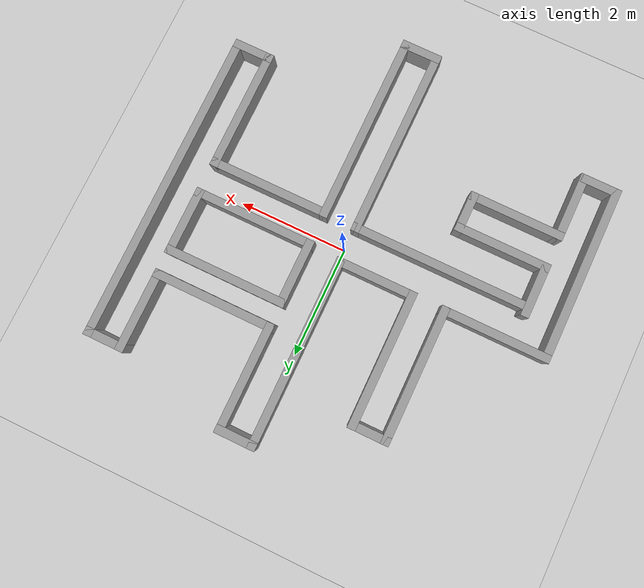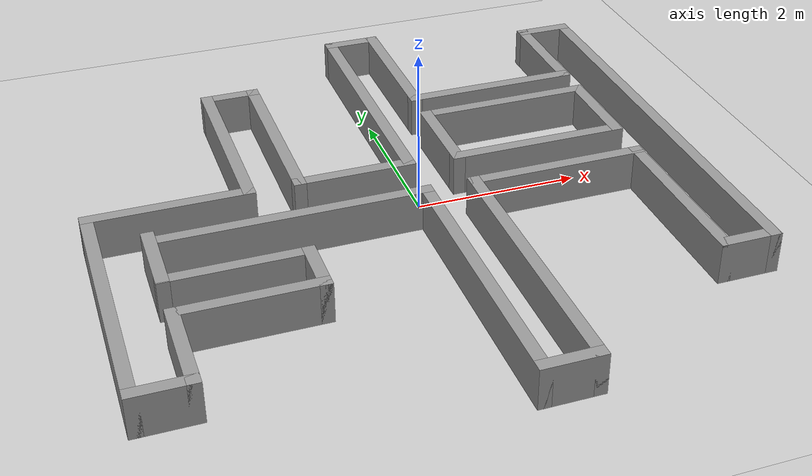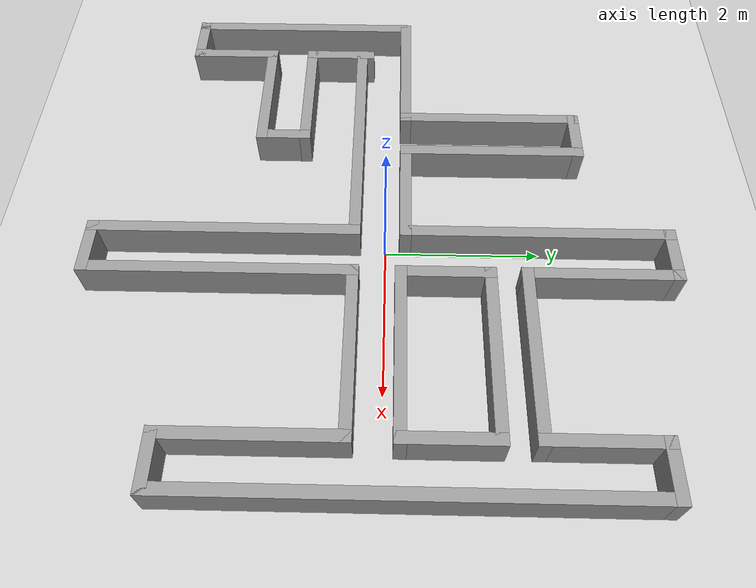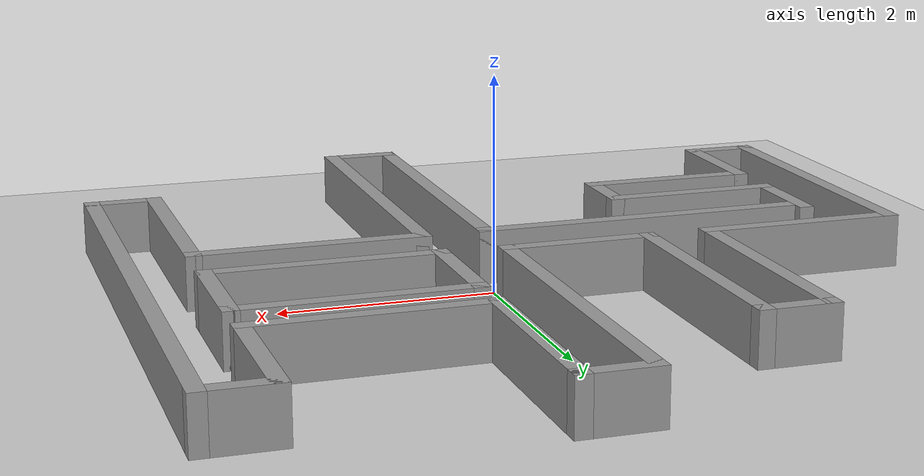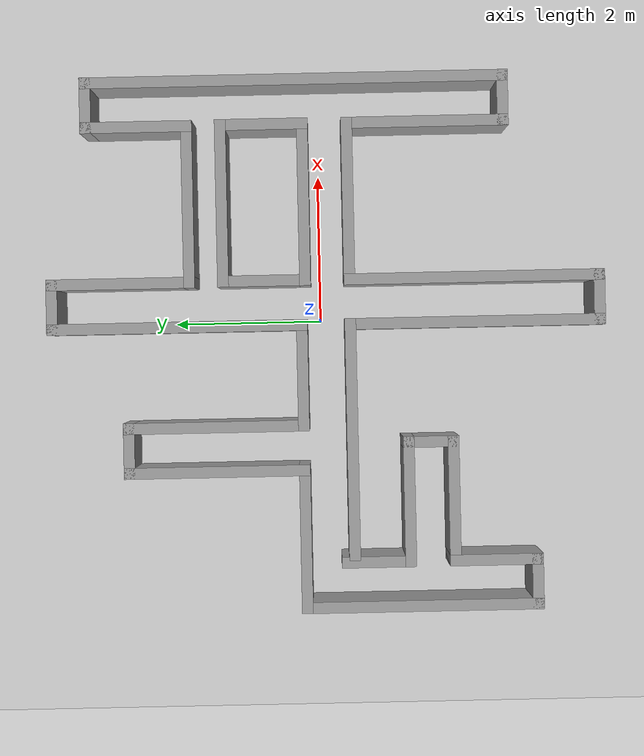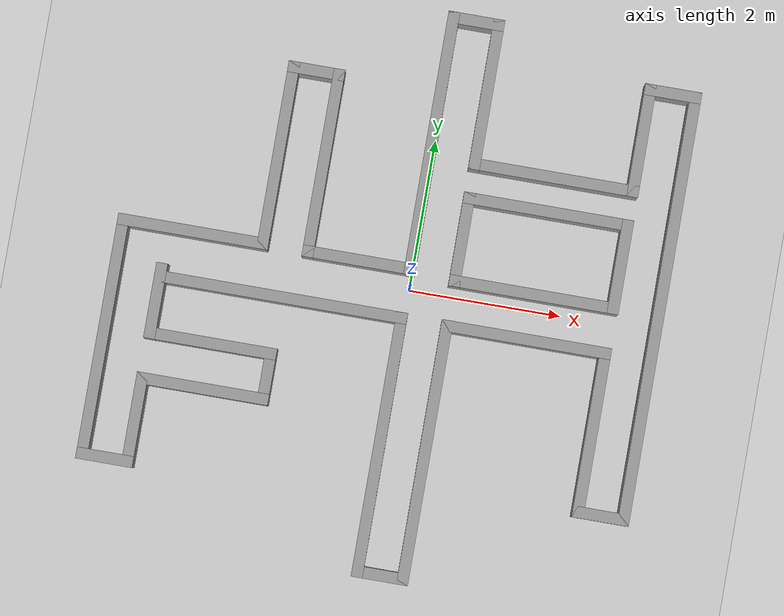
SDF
<sdf version="1.7">
 <world name="default">
  <light name="sun" type="directional">
   <pose>0 0 10 0 -0 0</pose>
   <diffuse>0.8 0.8 0.8 1</diffuse>
   <specular>0.2 0.2 0.2 1</specular>
   <attenuation>
    <range>1000</range>
    <constant>0.9</constant>
    <linear>0.01</linear>
    <quadratic>0.001</quadratic>
   </attenuation>
   <direction>-0.5 0.1 -0.9</direction>
   <spot><inner_angle>0</inner_angle><outer_angle>0</outer_angle><falloff>0</falloff></spot>
  </light>
  <model name="ground_plane">
   <static>1</static>
   <link name="link">
    <collision name="collision">
     <geometry><plane><normal>0 0 1</normal><size>100 100</size></plane></geometry>
     <surface>
      <contact><collide_bitmask>65535</collide_bitmask></contact>
      <friction><ode><mu>100</mu><mu2>50</mu2></ode></friction>
     </surface>
    </collision>
    <visual name="visual">
     <cast_shadows>0</cast_shadows>
     <geometry><plane><normal>0 0 1</normal><size>100 100</size></plane></geometry>
     <material>
      <script><uri>file://media/materials/scripts/gazebo.material</uri><name>Gazebo/Grey</name></script>
     </material>
    </visual>
   </link>
  </model>
  <physics type="ode">
   <real_time_update_rate>1000</real_time_update_rate>
   <max_step_size>0.001</max_step_size>
   <real_time_factor>1</real_time_factor>
   <ode>
    <solver>
     <type>quick</type>
     <iters>150</iters>
     <precon_iters>0</precon_iters>
     <sor>1.4</sor>
     <use_dynamic_moi_rescaling>1</use_dynamic_moi_rescaling>
    </solver>
    <constraints>
     <cfm>1e-05</cfm>
     <erp>0.2</erp>
     <contact_max_correcting_vel>2000</contact_max_correcting_vel>
     <contact_surface_layer>0.01</contact_surface_layer>
    </constraints>
   </ode>
  </physics>
  <scene><ambient>0.4 0.4 0.4 1</ambient><background>0.7 0.7 0.7 1</background><shadows>1</shadows></scene>
  <gravity>0 0 -9.8</gravity>
  <magnetic_field>6e-06 2.3e-05 -4.2e-05</magnetic_field>
  <atmosphere type="adiabatic"/>
  <spherical_coordinates>
   <surface_model>EARTH_WGS84</surface_model>
   <latitude_deg>0</latitude_deg>
   <longitude_deg>0</longitude_deg>
   <elevation>0</elevation>
   <heading_deg>0</heading_deg>
  </spherical_coordinates>
  <model name="walls_0">
   <pose>-0.294909 -0.070334 0 0 -0 0</pose>
   <link name="Wall_1">
    <collision name="Wall_1_Collision">
     <geometry><box><size>3.25 0.15 0.5</size></box></geometry>
     <pose>0 0 0.25 0 -0 0</pose>
    </collision>
    <visual name="Wall_1_Visual">
     <pose>0 0 0.25 0 -0 0</pose>
     <geometry><box><size>3.25 0.15 0.5</size></box></geometry>
     <material>
      <script><uri>file://media/materials/scripts/gazebo.material</uri><name>Gazebo/Grey</name></script>
      <ambient>1 1 1 1</ambient>
     </material>
     <meta><layer>0</layer></meta>
    </visual>
    <pose>-1.3 -0.325 0 0 -0 0</pose>
   </link>
   <link name="Wall_10">
    <collision name="Wall_10_Collision">
     <geometry><box><size>1.5 0.15 0.5</size></box></geometry>
     <pose>0 0 0.25 0 -0 0</pose>
    </collision>
    <visual name="Wall_10_Visual">
     <pose>0 0 0.25 0 -0 0</pose>
     <geometry><box><size>1.5 0.15 0.5</size></box></geometry>
     <material>
      <script><uri>file://media/materials/scripts/gazebo.material</uri><name>Gazebo/Grey</name></script>
      <ambient>1 1 1 1</ambient>
     </material>
     <meta><layer>0</layer></meta>
    </visual>
    <pose>2.95 2.5 0 0 -0 -1.5708</pose>
   </link>
   <link name="Wall_11">
    <collision name="Wall_11_Collision">
     <geometry><box><size>2.25 0.15 0.5</size></box></geometry>
     <pose>0 0 0.25 0 -0 0</pose>
    </collision>
    <visual name="Wall_11_Visual">
     <pose>0 0 0.25 0 -0 0</pose>
     <geometry><box><size>2.25 0.15 0.5</size></box></geometry>
     <material>
      <script><uri>file://media/materials/scripts/gazebo.material</uri><name>Gazebo/Grey</name></script>
      <ambient>1 1 1 1</ambient>
     </material>
     <meta><layer>0</layer></meta>
    </visual>
    <pose>1.9 1.825 0 0 -0 3.14159</pose>
   </link>
   <link name="Wall_12">
    <collision name="Wall_12_Collision">
     <geometry><box><size>2 0.15 0.5</size></box></geometry>
     <pose>0 0 0.25 0 -0 0</pose>
    </collision>
    <visual name="Wall_12_Visual">
     <pose>0 0 0.25 0 -0 0</pose>
     <geometry><box><size>2 0.15 0.5</size></box></geometry>
     <material>
      <script><uri>file://media/materials/scripts/gazebo.material</uri><name>Gazebo/Grey</name></script>
      <ambient>1 1 1 1</ambient>
     </material>
     <meta><layer>0</layer></meta>
    </visual>
    <pose>0.85 2.75 0 0 -0 1.5708</pose>
   </link>
   <link name="Wall_13">
    <collision name="Wall_13_Collision">
     <geometry><box><size>0.75 0.15 0.5</size></box></geometry>
     <pose>0 0 0.25 0 -0 0</pose>
    </collision>
    <visual name="Wall_13_Visual">
     <pose>0 0 0.25 0 -0 0</pose>
     <geometry><box><size>0.75 0.15 0.5</size></box></geometry>
     <material>
      <script><uri>file://media/materials/scripts/gazebo.material</uri><name>Gazebo/Grey</name></script>
      <ambient>1 1 1 1</ambient>
     </material>
     <meta><layer>0</layer></meta>
    </visual>
    <pose>0.55 3.675 0 0 -0 3.14159</pose>
   </link>
   <link name="Wall_14">
    <collision name="Wall_14_Collision">
     <geometry><box><size>3.5 0.15 0.5</size></box></geometry>
     <pose>0 0 0.25 0 -0 0</pose>
    </collision>
    <visual name="Wall_14_Visual">
     <pose>0 0 0.25 0 -0 0</pose>
     <geometry><box><size>3.5 0.15 0.5</size></box></geometry>
     <material>
      <script><uri>file://media/materials/scripts/gazebo.material</uri><name>Gazebo/Grey</name></script>
      <ambient>1 1 1 1</ambient>
     </material>
     <meta><layer>0</layer></meta>
    </visual>
    <pose>0.25 2 0 0 -0 -1.5708</pose>
   </link>
   <link name="Wall_15">
    <collision name="Wall_15_Collision">
     <geometry><box><size>1.5 0.15 0.5</size></box></geometry>
     <pose>0 0 0.25 0 -0 0</pose>
    </collision>
    <visual name="Wall_15_Visual">
     <pose>0 0 0.25 0 -0 0</pose>
     <geometry><box><size>1.5 0.15 0.5</size></box></geometry>
     <material>
      <script><uri>file://media/materials/scripts/gazebo.material</uri><name>Gazebo/Grey</name></script>
      <ambient>1 1 1 1</ambient>
     </material>
     <meta><layer>0</layer></meta>
    </visual>
    <pose>-0.425 0.325 0 0 -0 3.14159</pose>
   </link>
   <link name="Wall_16">
    <collision name="Wall_16_Collision">
     <geometry><box><size>2.5 0.15 0.5</size></box></geometry>
     <pose>0 0 0.25 0 -0 0</pose>
    </collision>
    <visual name="Wall_16_Visual">
     <pose>0 0 0.25 0 -0 0</pose>
     <geometry><box><size>2.5 0.15 0.5</size></box></geometry>
     <material>
      <script><uri>file://media/materials/scripts/gazebo.material</uri><name>Gazebo/Grey</name></script>
      <ambient>1 1 1 1</ambient>
     </material>
     <meta><layer>0</layer></meta>
    </visual>
    <pose>-1.1 1.5 0 0 -0 1.5708</pose>
   </link>
   <link name="Wall_17">
    <collision name="Wall_17_Collision">
     <geometry><box><size>0.75 0.15 0.5</size></box></geometry>
     <pose>0 0 0.25 0 -0 0</pose>
    </collision>
    <visual name="Wall_17_Visual">
     <pose>0 0 0.25 0 -0 0</pose>
     <geometry><box><size>0.75 0.15 0.5</size></box></geometry>
     <material>
      <script><uri>file://media/materials/scripts/gazebo.material</uri><name>Gazebo/Grey</name></script>
      <ambient>1 1 1 1</ambient>
     </material>
     <meta><layer>0</layer></meta>
    </visual>
    <pose>-1.4 2.675 0 0 -0 3.14159</pose>
   </link>
   <link name="Wall_18">
    <collision name="Wall_18_Collision">
     <geometry><box><size>2.5 0.15 0.5</size></box></geometry>
     <pose>0 0 0.25 0 -0 0</pose>
    </collision>
    <visual name="Wall_18_Visual">
     <pose>0 0 0.25 0 -0 0</pose>
     <geometry><box><size>2.5 0.15 0.5</size></box></geometry>
     <material>
      <script><uri>file://media/materials/scripts/gazebo.material</uri><name>Gazebo/Grey</name></script>
      <ambient>1 1 1 1</ambient>
     </material>
     <meta><layer>0</layer></meta>
    </visual>
    <pose>-1.7 1.5 0 0 -0 -1.5708</pose>
   </link>
   <link name="Wall_19">
    <collision name="Wall_19_Collision">
     <geometry><box><size>2 0.15 0.5</size></box></geometry>
     <pose>0 0 0.25 0 -0 0</pose>
    </collision>
    <visual name="Wall_19_Visual">
     <pose>0 0 0.25 0 -0 0</pose>
     <geometry><box><size>2 0.15 0.5</size></box></geometry>
     <material>
      <script><uri>file://media/materials/scripts/gazebo.material</uri><name>Gazebo/Grey</name></script>
      <ambient>1 1 1 1</ambient>
     </material>
     <meta><layer>0</layer></meta>
    </visual>
    <pose>-2.625 0.325 0 0 -0 3.14159</pose>
   </link>
   <link name="Wall_2">
    <collision name="Wall_2_Collision">
     <geometry><box><size>3.5 0.15 0.5</size></box></geometry>
     <pose>0 0 0.25 0 -0 0</pose>
    </collision>
    <visual name="Wall_2_Visual">
     <pose>0 0 0.25 0 -0 0</pose>
     <geometry><box><size>3.5 0.15 0.5</size></box></geometry>
     <material>
      <script><uri>file://media/materials/scripts/gazebo.material</uri><name>Gazebo/Grey</name></script>
      <ambient>1 1 1 1</ambient>
     </material>
     <meta><layer>0</layer></meta>
    </visual>
    <pose>0.25 -2 0 0 -0 -1.5708</pose>
   </link>
   <link name="Wall_20">
    <collision name="Wall_20_Collision">
     <geometry><box><size>3.25 0.15 0.5</size></box></geometry>
     <pose>0 0 0.25 0 -0 0</pose>
    </collision>
    <visual name="Wall_20_Visual">
     <pose>0 0 0.25 0 -0 0</pose>
     <geometry><box><size>3.25 0.15 0.5</size></box></geometry>
     <material>
      <script><uri>file://media/materials/scripts/gazebo.material</uri><name>Gazebo/Grey</name></script>
      <ambient>1 1 1 1</ambient>
     </material>
     <meta><layer>0</layer></meta>
    </visual>
    <pose>-3.55 -1.225 0 0 -0 -1.5708</pose>
   </link>
   <link name="Wall_21">
    <collision name="Wall_21_Collision">
     <geometry><box><size>0.75 0.15 0.5</size></box></geometry>
     <pose>0 0 0.25 0 -0 0</pose>
    </collision>
    <visual name="Wall_21_Visual">
     <pose>0 0 0.25 0 -0 0</pose>
     <geometry><box><size>0.75 0.15 0.5</size></box></geometry>
     <material>
      <script><uri>file://media/materials/scripts/gazebo.material</uri><name>Gazebo/Grey</name></script>
      <ambient>1 1 1 1</ambient>
     </material>
     <meta><layer>0</layer></meta>
    </visual>
    <pose>-3.25 -2.775 0 0 -0 0</pose>
   </link>
   <link name="Wall_22">
    <collision name="Wall_22_Collision">
     <geometry><box><size>1.25 0.15 0.5</size></box></geometry>
     <pose>0 0 0.25 0 -0 0</pose>
    </collision>
    <visual name="Wall_22_Visual">
     <pose>0 0 0.25 0 -0 0</pose>
     <geometry><box><size>1.25 0.15 0.5</size></box></geometry>
     <material>
      <script><uri>file://media/materials/scripts/gazebo.material</uri><name>Gazebo/Grey</name></script>
      <ambient>1 1 1 1</ambient>
     </material>
     <meta><layer>0</layer></meta>
    </visual>
    <pose>-2.95 -2.225 0 0 -0 1.5708</pose>
   </link>
   <link name="Wall_23">
    <collision name="Wall_23_Collision">
     <geometry><box><size>1.75 0.15 0.5</size></box></geometry>
     <pose>0 0 0.25 0 -0 0</pose>
    </collision>
    <visual name="Wall_23_Visual">
     <pose>0 0 0.25 0 -0 0</pose>
     <geometry><box><size>1.75 0.15 0.5</size></box></geometry>
     <material>
      <script><uri>file://media/materials/scripts/gazebo.material</uri><name>Gazebo/Grey</name></script>
      <ambient>1 1 1 1</ambient>
     </material>
     <meta><layer>0</layer></meta>
    </visual>
    <pose>-2.15 -1.675 0 0 -0 0</pose>
   </link>
   <link name="Wall_24">
    <collision name="Wall_24_Collision">
     <geometry><box><size>0.75 0.15 0.5</size></box></geometry>
     <pose>0 0 0.25 0 -0 0</pose>
    </collision>
    <visual name="Wall_24_Visual">
     <pose>0 0 0.25 0 -0 0</pose>
     <geometry><box><size>0.75 0.15 0.5</size></box></geometry>
     <material>
      <script><uri>file://media/materials/scripts/gazebo.material</uri><name>Gazebo/Grey</name></script>
      <ambient>1 1 1 1</ambient>
     </material>
     <meta><layer>0</layer></meta>
    </visual>
    <pose>-1.35 -1.375 0 0 -0 1.5708</pose>
   </link>
   <link name="Wall_25">
    <collision name="Wall_25_Collision">
     <geometry><box><size>1.75 0.15 0.5</size></box></geometry>
     <pose>0 0 0.25 0 -0 0</pose>
    </collision>
    <visual name="Wall_25_Visual">
     <pose>0 0 0.25 0 -0 0</pose>
     <geometry><box><size>1.75 0.15 0.5</size></box></geometry>
     <material>
      <script><uri>file://media/materials/scripts/gazebo.material</uri><name>Gazebo/Grey</name></script>
      <ambient>1 1 1 1</ambient>
     </material>
     <meta><layer>0</layer></meta>
    </visual>
    <pose>-2.15 -1.075 0 0 -0 3.14159</pose>
   </link>
   <link name="Wall_26">
    <collision name="Wall_26_Collision">
     <geometry><box><size>1 0.15 0.5</size></box></geometry>
     <pose>0 0 0.25 0 -0 0</pose>
    </collision>
    <visual name="Wall_26_Visual">
     <pose>0 0 0.25 0 -0 0</pose>
     <geometry><box><size>1 0.15 0.5</size></box></geometry>
     <material>
      <script><uri>file://media/materials/scripts/gazebo.material</uri><name>Gazebo/Grey</name></script>
      <ambient>1 1 1 1</ambient>
     </material>
     <meta><layer>0</layer></meta>
    </visual>
    <pose>-2.95 -0.65 0 0 -0 1.5708</pose>
   </link>
   <link name="Wall_28">
    <collision name="Wall_28_Collision">
     <geometry><box><size>2.25 0.15 0.5</size></box></geometry>
     <pose>0 0 0.25 0 -0 0</pose>
    </collision>
    <visual name="Wall_28_Visual">
     <pose>0 0 0.25 0 -0 0</pose>
     <geometry><box><size>2.25 0.15 0.5</size></box></geometry>
     <material>
      <script><uri>file://media/materials/scripts/gazebo.material</uri><name>Gazebo/Grey</name></script>
      <ambient>1 1 1 1</ambient>
     </material>
     <meta><layer>0</layer></meta>
    </visual>
    <pose>1.904 1.371 0 0 -0 0</pose>
   </link>
   <link name="Wall_29">
    <collision name="Wall_29_Collision">
     <geometry><box><size>1.25 0.15 0.5</size></box></geometry>
     <pose>0 0 0.25 0 -0 0</pose>
    </collision>
    <visual name="Wall_29_Visual">
     <pose>0 0 0.25 0 -0 0</pose>
     <geometry><box><size>1.25 0.15 0.5</size></box></geometry>
     <material>
      <script><uri>file://media/materials/scripts/gazebo.material</uri><name>Gazebo/Grey</name></script>
      <ambient>1 1 1 1</ambient>
     </material>
     <meta><layer>0</layer></meta>
    </visual>
    <pose>2.954 0.821 0 0 -0 -1.5708</pose>
   </link>
   <link name="Wall_3">
    <collision name="Wall_3_Collision">
     <geometry><box><size>0.75 0.15 0.5</size></box></geometry>
     <pose>0 0 0.25 0 -0 0</pose>
    </collision>
    <visual name="Wall_3_Visual">
     <pose>0 0 0.25 0 -0 0</pose>
     <geometry><box><size>0.75 0.15 0.5</size></box></geometry>
     <material>
      <script><uri>file://media/materials/scripts/gazebo.material</uri><name>Gazebo/Grey</name></script>
      <ambient>1 1 1 1</ambient>
     </material>
     <meta><layer>0</layer></meta>
    </visual>
    <pose>0.55 -3.675 0 0 -0 0</pose>
   </link>
   <link name="Wall_30">
    <collision name="Wall_30_Collision">
     <geometry><box><size>2.25 0.15 0.5</size></box></geometry>
     <pose>0 0 0.25 0 -0 0</pose>
    </collision>
    <visual name="Wall_30_Visual">
     <pose>0 0 0.25 0 -0 0</pose>
     <geometry><box><size>2.25 0.15 0.5</size></box></geometry>
     <material>
      <script><uri>file://media/materials/scripts/gazebo.material</uri><name>Gazebo/Grey</name></script>
      <ambient>1 1 1 1</ambient>
     </material>
     <meta><layer>0</layer></meta>
    </visual>
    <pose>1.904 0.271 0 0 -0 3.14159</pose>
   </link>
   <link name="Wall_31">
    <collision name="Wall_31_Collision">
     <geometry><box><size>1.25 0.15 0.5</size></box></geometry>
     <pose>0 0 0.25 0 -0 0</pose>
    </collision>
    <visual name="Wall_31_Visual">
     <pose>0 0 0.25 0 -0 0</pose>
     <geometry><box><size>1.25 0.15 0.5</size></box></geometry>
     <material>
      <script><uri>file://media/materials/scripts/gazebo.material</uri><name>Gazebo/Grey</name></script>
      <ambient>1 1 1 1</ambient>
     </material>
     <meta><layer>0</layer></meta>
    </visual>
    <pose>0.854 0.821 0 0 -0 1.5708</pose>
   </link>
   <link name="Wall_4">
    <collision name="Wall_4_Collision">
     <geometry><box><size>3.5 0.15 0.5</size></box></geometry>
     <pose>0 0 0.25 0 -0 0</pose>
    </collision>
    <visual name="Wall_4_Visual">
     <pose>0 0 0.25 0 -0 0</pose>
     <geometry><box><size>3.5 0.15 0.5</size></box></geometry>
     <material>
      <script><uri>file://media/materials/scripts/gazebo.material</uri><name>Gazebo/Grey</name></script>
      <ambient>1 1 1 1</ambient>
     </material>
     <meta><layer>0</layer></meta>
    </visual>
    <pose>0.85 -2 0 0 -0 1.5708</pose>
   </link>
   <link name="Wall_5">
    <collision name="Wall_5_Collision">
     <geometry><box><size>2.25 0.15 0.5</size></box></geometry>
     <pose>0 0 0.25 0 -0 0</pose>
    </collision>
    <visual name="Wall_5_Visual">
     <pose>0 0 0.25 0 -0 0</pose>
     <geometry><box><size>2.25 0.15 0.5</size></box></geometry>
     <material>
      <script><uri>file://media/materials/scripts/gazebo.material</uri><name>Gazebo/Grey</name></script>
      <ambient>1 1 1 1</ambient>
     </material>
     <meta><layer>0</layer></meta>
    </visual>
    <pose>1.9 -0.325 0 0 -0 0</pose>
   </link>
   <link name="Wall_6">
    <collision name="Wall_6_Collision">
     <geometry><box><size>2.25 0.15 0.5</size></box></geometry>
     <pose>0 0 0.25 0 -0 0</pose>
    </collision>
    <visual name="Wall_6_Visual">
     <pose>0 0 0.25 0 -0 0</pose>
     <geometry><box><size>2.25 0.15 0.5</size></box></geometry>
     <material>
      <script><uri>file://media/materials/scripts/gazebo.material</uri><name>Gazebo/Grey</name></script>
      <ambient>1 1 1 1</ambient>
     </material>
     <meta><layer>0</layer></meta>
    </visual>
    <pose>2.95 -1.375 0 0 -0 -1.5708</pose>
   </link>
   <link name="Wall_7">
    <collision name="Wall_7_Collision">
     <geometry><box><size>0.75 0.15 0.5</size></box></geometry>
     <pose>0 0 0.25 0 -0 0</pose>
    </collision>
    <visual name="Wall_7_Visual">
     <pose>0 0 0.25 0 -0 0</pose>
     <geometry><box><size>0.75 0.15 0.5</size></box></geometry>
     <material>
      <script><uri>file://media/materials/scripts/gazebo.material</uri><name>Gazebo/Grey</name></script>
      <ambient>1 1 1 1</ambient>
     </material>
     <meta><layer>0</layer></meta>
    </visual>
    <pose>3.25 -2.425 0 0 -0 0</pose>
   </link>
   <link name="Wall_8">
    <collision name="Wall_8_Collision">
     <geometry><box><size>5.75 0.15 0.5</size></box></geometry>
     <pose>0 0 0.25 0 -0 0</pose>
    </collision>
    <visual name="Wall_8_Visual">
     <pose>0 0 0.25 0 -0 0</pose>
     <geometry><box><size>5.75 0.15 0.5</size></box></geometry>
     <material>
      <script><uri>file://media/materials/scripts/gazebo.material</uri><name>Gazebo/Grey</name></script>
      <ambient>1 1 1 1</ambient>
     </material>
     <meta><layer>0</layer></meta>
    </visual>
    <pose>3.55 0.375 0 0 -0 1.5708</pose>
   </link>
   <link name="Wall_9">
    <collision name="Wall_9_Collision">
     <geometry><box><size>0.75 0.15 0.5</size></box></geometry>
     <pose>0 0 0.25 0 -0 0</pose>
    </collision>
    <visual name="Wall_9_Visual">
     <pose>0 0 0.25 0 -0 0</pose>
     <geometry><box><size>0.75 0.15 0.5</size></box></geometry>
     <material>
      <script><uri>file://media/materials/scripts/gazebo.material</uri><name>Gazebo/Grey</name></script>
      <ambient>1 1 1 1</ambient>
     </material>
     <meta><layer>0</layer></meta>
    </visual>
    <pose>3.25 3.175 0 0 -0 3.14159</pose>
   </link>
   <static>1</static>
  </model>
 </world>
</sdf>
